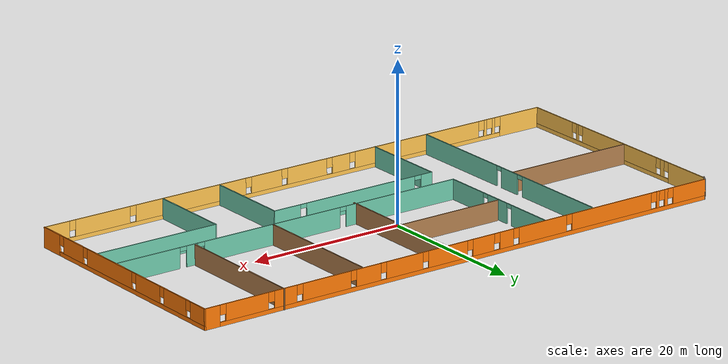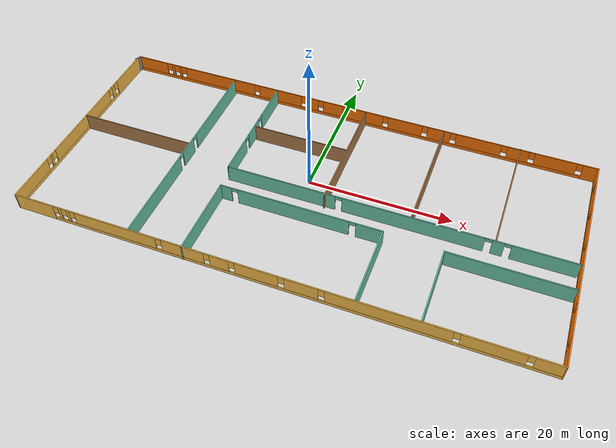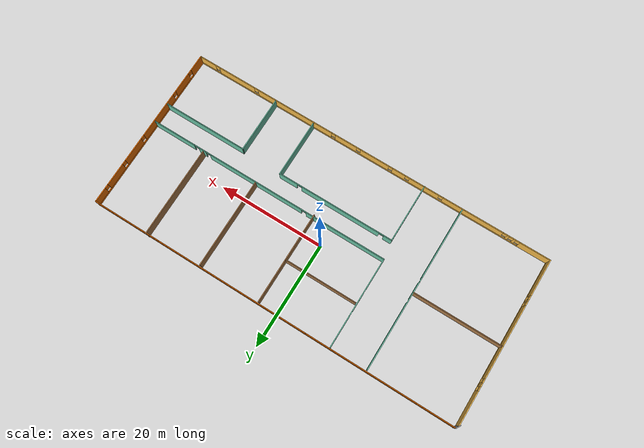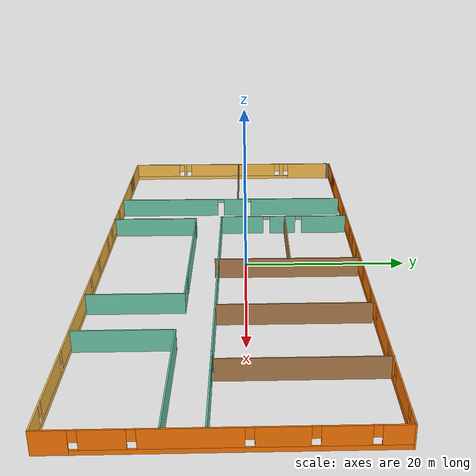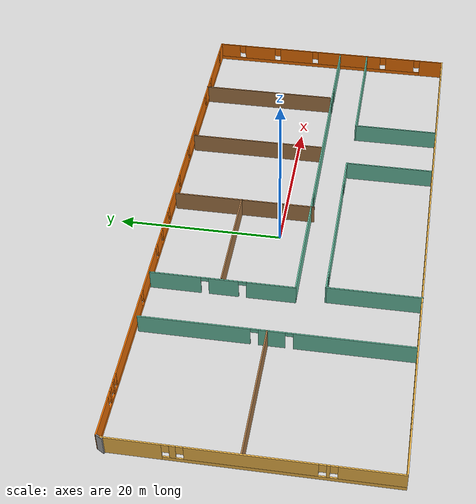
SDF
<sdf version="1.6">
 <model name="world">
  <pose>0.997952 -1.93669 0 0 -0 0</pose>
  <link name="Wall_11">
   <pose>-18.4502 -0.168882 0 0 0 -1.5708</pose>
   <visual name="Wall_11_Visual_0">
    <pose>-9.3167 0 1.25 0 -0 0</pose>
    <geometry><box><size>12.8666 0.15 2.5</size></box></geometry>
    <material>
     <script><uri>file://media/materials/scripts/gazebo.material</uri><name>Gazebo/Grey</name></script>
     <ambient>0.435294 0.796078 0.67451 1</ambient>
    </material>
    <meta><layer>0</layer></meta>
   </visual>
   <collision name="Wall_11_Collision_0">
    <geometry><box><size>12.8666 0.15 2.5</size></box></geometry>
    <pose>-9.3167 0 1.25 0 -0 0</pose>
   </collision>
   <visual name="Wall_11_Visual_1">
    <pose>-0.463393 0 1.25 0 -0 0</pose>
    <geometry><box><size>3.04002 0.15 2.5</size></box></geometry>
    <material>
     <script><uri>file://media/materials/scripts/gazebo.material</uri><name>Gazebo/Grey</name></script>
     <ambient>0.435294 0.796078 0.67451 1</ambient>
    </material>
    <meta><layer>0</layer></meta>
   </visual>
   <collision name="Wall_11_Collision_1">
    <geometry><box><size>3.04002 0.15 2.5</size></box></geometry>
    <pose>-0.463393 0 1.25 0 -0 0</pose>
   </collision>
   <visual name="Wall_11_Visual_2">
    <pose>8.85331 0 1.25 0 -0 0</pose>
    <geometry><box><size>13.7934 0.15 2.5</size></box></geometry>
    <material>
     <script><uri>file://media/materials/scripts/gazebo.material</uri><name>Gazebo/Grey</name></script>
     <ambient>0.435294 0.796078 0.67451 1</ambient>
    </material>
    <meta><layer>0</layer></meta>
   </visual>
   <collision name="Wall_11_Collision_2">
    <geometry><box><size>13.7934 0.15 2.5</size></box></geometry>
    <pose>8.85331 0 1.25 0 -0 0</pose>
   </collision>
   <visual name="Wall_11_Visual_3">
    <pose>-2.4334 0 2.25 0 -0 0</pose>
    <geometry><box><size>0.9 0.15 0.5</size></box></geometry>
    <material>
     <script><uri>file://media/materials/scripts/gazebo.material</uri><name>Gazebo/Grey</name></script>
     <ambient>0.435294 0.796078 0.67451 1</ambient>
    </material>
    <meta><layer>0</layer></meta>
   </visual>
   <collision name="Wall_11_Collision_3">
    <geometry><box><size>0.9 0.15 0.5</size></box></geometry>
    <pose>-2.4334 0 2.25 0 -0 0</pose>
   </collision>
   <visual name="Wall_11_Visual_4">
    <pose>1.50662 0 2.25 0 -0 0</pose>
    <geometry><box><size>0.9 0.15 0.5</size></box></geometry>
    <material>
     <script><uri>file://media/materials/scripts/gazebo.material</uri><name>Gazebo/Grey</name></script>
     <ambient>0.435294 0.796078 0.67451 1</ambient>
    </material>
    <meta><layer>0</layer></meta>
   </visual>
   <collision name="Wall_11_Collision_4">
    <geometry><box><size>0.9 0.15 0.5</size></box></geometry>
    <pose>1.50662 0 2.25 0 -0 0</pose>
   </collision>
  </link>
  <link name="Wall_13">
   <pose>-11.4716 7.14221 0 0 0 -1.5708</pose>
   <visual name="Wall_13_Visual_0">
    <pose>-5.58135 0 1.25 0 -0 0</pose>
    <geometry><box><size>6.0873 0.15 2.5</size></box></geometry>
    <material>
     <script><uri>file://media/materials/scripts/gazebo.material</uri><name>Gazebo/Grey</name></script>
     <ambient>0.435294 0.796078 0.67451 1</ambient>
    </material>
    <meta><layer>0</layer></meta>
   </visual>
   <collision name="Wall_13_Collision_0">
    <geometry><box><size>6.0873 0.15 2.5</size></box></geometry>
    <pose>-5.58135 0 1.25 0 -0 0</pose>
   </collision>
   <visual name="Wall_13_Visual_1">
    <pose>0.128558 0 1.25 0 -0 0</pose>
    <geometry><box><size>3.53252 0.15 2.5</size></box></geometry>
    <material>
     <script><uri>file://media/materials/scripts/gazebo.material</uri><name>Gazebo/Grey</name></script>
     <ambient>0.435294 0.796078 0.67451 1</ambient>
    </material>
    <meta><layer>0</layer></meta>
   </visual>
   <collision name="Wall_13_Collision_1">
    <geometry><box><size>3.53252 0.15 2.5</size></box></geometry>
    <pose>0.128558 0 1.25 0 -0 0</pose>
   </collision>
   <visual name="Wall_13_Visual_2">
    <pose>5.70991 0 1.25 0 -0 0</pose>
    <geometry><box><size>5.83018 0.15 2.5</size></box></geometry>
    <material>
     <script><uri>file://media/materials/scripts/gazebo.material</uri><name>Gazebo/Grey</name></script>
     <ambient>0.435294 0.796078 0.67451 1</ambient>
    </material>
    <meta><layer>0</layer></meta>
   </visual>
   <collision name="Wall_13_Collision_2">
    <geometry><box><size>5.83018 0.15 2.5</size></box></geometry>
    <pose>5.70991 0 1.25 0 -0 0</pose>
   </collision>
   <visual name="Wall_13_Visual_3">
    <pose>-2.0877 0 2.25 0 -0 0</pose>
    <geometry><box><size>0.9 0.15 0.5</size></box></geometry>
    <material>
     <script><uri>file://media/materials/scripts/gazebo.material</uri><name>Gazebo/Grey</name></script>
     <ambient>0.435294 0.796078 0.67451 1</ambient>
    </material>
    <meta><layer>0</layer></meta>
   </visual>
   <collision name="Wall_13_Collision_3">
    <geometry><box><size>0.9 0.15 0.5</size></box></geometry>
    <pose>-2.0877 0 2.25 0 -0 0</pose>
   </collision>
   <visual name="Wall_13_Visual_4">
    <pose>2.34482 0 2.25 0 -0 0</pose>
    <geometry><box><size>0.9 0.15 0.5</size></box></geometry>
    <material>
     <script><uri>file://media/materials/scripts/gazebo.material</uri><name>Gazebo/Grey</name></script>
     <ambient>0.435294 0.796078 0.67451 1</ambient>
    </material>
    <meta><layer>0</layer></meta>
   </visual>
   <collision name="Wall_13_Collision_4">
    <geometry><box><size>0.9 0.15 0.5</size></box></geometry>
    <pose>2.34482 0 2.25 0 -0 0</pose>
   </collision>
  </link>
  <link name="Wall_14">
   <pose>11.8284 -1.40779 0 0 -0 0</pose>
   <visual name="Wall_14_Visual_0">
    <pose>-15.6414 0 1.25 0 -0 0</pose>
    <geometry><box><size>15.4671 0.15 2.5</size></box></geometry>
    <material>
     <script><uri>file://media/materials/scripts/gazebo.material</uri><name>Gazebo/Grey</name></script>
     <ambient>0.435294 0.796078 0.67451 1</ambient>
    </material>
    <meta><layer>0</layer></meta>
   </visual>
   <collision name="Wall_14_Collision_0">
    <geometry><box><size>15.4671 0.15 2.5</size></box></geometry>
    <pose>-15.6414 0 1.25 0 -0 0</pose>
   </collision>
   <visual name="Wall_14_Visual_1">
    <pose>2.37266 0 1.25 0 -0 0</pose>
    <geometry><box><size>18.761 0.15 2.5</size></box></geometry>
    <material>
     <script><uri>file://media/materials/scripts/gazebo.material</uri><name>Gazebo/Grey</name></script>
     <ambient>0.435294 0.796078 0.67451 1</ambient>
    </material>
    <meta><layer>0</layer></meta>
   </visual>
   <collision name="Wall_14_Collision_1">
    <geometry><box><size>18.761 0.15 2.5</size></box></geometry>
    <pose>2.37266 0 1.25 0 -0 0</pose>
   </collision>
   <visual name="Wall_14_Visual_2">
    <pose>13.406 0 1.25 0 -0 0</pose>
    <geometry><box><size>1.50558 0.15 2.5</size></box></geometry>
    <material>
     <script><uri>file://media/materials/scripts/gazebo.material</uri><name>Gazebo/Grey</name></script>
     <ambient>0.435294 0.796078 0.67451 1</ambient>
    </material>
    <meta><layer>0</layer></meta>
   </visual>
   <collision name="Wall_14_Collision_2">
    <geometry><box><size>1.50558 0.15 2.5</size></box></geometry>
    <pose>13.406 0 1.25 0 -0 0</pose>
   </collision>
   <visual name="Wall_14_Visual_3">
    <pose>19.2169 0 1.25 0 -0 0</pose>
    <geometry><box><size>8.31625 0.15 2.5</size></box></geometry>
    <material>
     <script><uri>file://media/materials/scripts/gazebo.material</uri><name>Gazebo/Grey</name></script>
     <ambient>0.435294 0.796078 0.67451 1</ambient>
    </material>
    <meta><layer>0</layer></meta>
   </visual>
   <collision name="Wall_14_Collision_3">
    <geometry><box><size>8.31625 0.15 2.5</size></box></geometry>
    <pose>19.2169 0 1.25 0 -0 0</pose>
   </collision>
   <visual name="Wall_14_Visual_4">
    <pose>-7.45785 0 2.25 0 -0 0</pose>
    <geometry><box><size>0.9 0.15 0.5</size></box></geometry>
    <material>
     <script><uri>file://media/materials/scripts/gazebo.material</uri><name>Gazebo/Grey</name></script>
     <ambient>0.435294 0.796078 0.67451 1</ambient>
    </material>
    <meta><layer>0</layer></meta>
   </visual>
   <collision name="Wall_14_Collision_4">
    <geometry><box><size>0.9 0.15 0.5</size></box></geometry>
    <pose>-7.45785 0 2.25 0 -0 0</pose>
   </collision>
   <visual name="Wall_14_Visual_5">
    <pose>12.2032 0 2.25 0 -0 0</pose>
    <geometry><box><size>0.9 0.15 0.5</size></box></geometry>
    <material>
     <script><uri>file://media/materials/scripts/gazebo.material</uri><name>Gazebo/Grey</name></script>
     <ambient>0.435294 0.796078 0.67451 1</ambient>
    </material>
    <meta><layer>0</layer></meta>
   </visual>
   <collision name="Wall_14_Collision_5">
    <geometry><box><size>0.9 0.15 0.5</size></box></geometry>
    <pose>12.2032 0 2.25 0 -0 0</pose>
   </collision>
   <visual name="Wall_14_Visual_6">
    <pose>14.6087 0 2.25 0 -0 0</pose>
    <geometry><box><size>0.9 0.15 0.5</size></box></geometry>
    <material>
     <script><uri>file://media/materials/scripts/gazebo.material</uri><name>Gazebo/Grey</name></script>
     <ambient>0.435294 0.796078 0.67451 1</ambient>
    </material>
    <meta><layer>0</layer></meta>
   </visual>
   <collision name="Wall_14_Collision_6">
    <geometry><box><size>0.9 0.15 0.5</size></box></geometry>
    <pose>14.6087 0 2.25 0 -0 0</pose>
   </collision>
  </link>
  <link name="Wall_16">
   <collision name="Wall_16_Collision">
    <geometry><box><size>17.5 0.15 2.5</size></box></geometry>
    <pose>0 0 1.25 0 -0 0</pose>
   </collision>
   <visual name="Wall_16_Visual">
    <pose>0 0 1.25 0 -0 0</pose>
    <geometry><box><size>17.5 0.15 2.5</size></box></geometry>
    <material>
     <script><uri>file://media/materials/scripts/gazebo.material</uri><name>Gazebo/Wood</name></script>
     <ambient>1 1 1 1</ambient>
    </material>
    <meta><layer>0</layer></meta>
   </visual>
   <pose>2.48559 6.92417 0 0 0 -1.5708</pose>
  </link>
  <link name="Wall_18">
   <collision name="Wall_18_Collision">
    <geometry><box><size>17 0.15 2.5</size></box></geometry>
    <pose>0 0 1.25 0 -0 0</pose>
   </collision>
   <visual name="Wall_18_Visual">
    <pose>0 0 1.25 0 -0 0</pose>
    <geometry><box><size>17 0.15 2.5</size></box></geometry>
    <material>
     <script><uri>file://media/materials/scripts/gazebo.material</uri><name>Gazebo/Wood</name></script>
     <ambient>1 1 1 1</ambient>
    </material>
    <meta><layer>0</layer></meta>
   </visual>
   <pose>14.1166 7.17417 0 0 0 -1.5708</pose>
  </link>
  <link name="Wall_20">
   <collision name="Wall_20_Collision">
    <geometry><box><size>17.25 0.15 2.5</size></box></geometry>
    <pose>0 0 1.25 0 -0 0</pose>
   </collision>
   <visual name="Wall_20_Visual">
    <pose>0 0 1.25 0 -0 0</pose>
    <geometry><box><size>17.25 0.15 2.5</size></box></geometry>
    <material>
     <script><uri>file://media/materials/scripts/gazebo.material</uri><name>Gazebo/Wood</name></script>
     <ambient>1 1 1 1</ambient>
    </material>
    <meta><layer>0</layer></meta>
   </visual>
   <pose>24.9101 7.42136 0 0 0 -1.5708</pose>
  </link>
  <link name="Wall_22">
   <collision name="Wall_22_Collision">
    <geometry><box><size>13.75 0.15 2.5</size></box></geometry>
    <pose>0 0 1.25 0 -0 0</pose>
   </collision>
   <visual name="Wall_22_Visual">
    <pose>0 0 1.25 0 -0 0</pose>
    <geometry><box><size>13.75 0.15 2.5</size></box></geometry>
    <material>
     <script><uri>file://media/materials/scripts/gazebo.material</uri><name>Gazebo/Wood</name></script>
     <ambient>1 1 1 1</ambient>
    </material>
    <meta><layer>0</layer></meta>
   </visual>
   <pose>-4.39243 7.31791 0 0 -0 0</pose>
  </link>
  <link name="Wall_24">
   <collision name="Wall_24_Collision">
    <geometry><box><size>11.25 0.15 2.5</size></box></geometry>
    <pose>0 0 1.25 0 -0 0</pose>
   </collision>
   <visual name="Wall_24_Visual">
    <pose>0 0 1.25 0 -0 0</pose>
    <geometry><box><size>11.25 0.15 2.5</size></box></geometry>
    <material>
     <script><uri>file://media/materials/scripts/gazebo.material</uri><name>Gazebo/Grey</name></script>
     <ambient>0.435294 0.796078 0.67451 1</ambient>
    </material>
    <meta><layer>0</layer></meta>
   </visual>
   <pose>-10.9133 -10.4214 0 0 0 -1.5708</pose>
  </link>
  <link name="Wall_26">
   <pose>0.261708 -4.87136 0 0 -0 0</pose>
   <visual name="Wall_26_Visual_0">
    <pose>-10.4274 0 1.25 0 -0 0</pose>
    <geometry><box><size>1.64525 0.15 2.5</size></box></geometry>
    <material>
     <script><uri>file://media/materials/scripts/gazebo.material</uri><name>Gazebo/Grey</name></script>
     <ambient>0.435294 0.796078 0.67451 1</ambient>
    </material>
    <meta><layer>0</layer></meta>
   </visual>
   <collision name="Wall_26_Collision_0">
    <geometry><box><size>1.64525 0.15 2.5</size></box></geometry>
    <pose>-10.4274 0 1.25 0 -0 0</pose>
   </collision>
   <visual name="Wall_26_Visual_1">
    <pose>-0.993281 0 1.25 0 -0 0</pose>
    <geometry><box><size>15.4229 0.15 2.5</size></box></geometry>
    <material>
     <script><uri>file://media/materials/scripts/gazebo.material</uri><name>Gazebo/Grey</name></script>
     <ambient>0.435294 0.796078 0.67451 1</ambient>
    </material>
    <meta><layer>0</layer></meta>
   </visual>
   <collision name="Wall_26_Collision_1">
    <geometry><box><size>15.4229 0.15 2.5</size></box></geometry>
    <pose>-0.993281 0 1.25 0 -0 0</pose>
   </collision>
   <visual name="Wall_26_Visual_2">
    <pose>9.4341 0 1.25 0 -0 0</pose>
    <geometry><box><size>3.63181 0.15 2.5</size></box></geometry>
    <material>
     <script><uri>file://media/materials/scripts/gazebo.material</uri><name>Gazebo/Grey</name></script>
     <ambient>0.435294 0.796078 0.67451 1</ambient>
    </material>
    <meta><layer>0</layer></meta>
   </visual>
   <collision name="Wall_26_Collision_2">
    <geometry><box><size>3.63181 0.15 2.5</size></box></geometry>
    <pose>9.4341 0 1.25 0 -0 0</pose>
   </collision>
   <visual name="Wall_26_Visual_3">
    <pose>-9.15475 0 2.25 0 -0 0</pose>
    <geometry><box><size>0.9 0.15 0.5</size></box></geometry>
    <material>
     <script><uri>file://media/materials/scripts/gazebo.material</uri><name>Gazebo/Grey</name></script>
     <ambient>0.435294 0.796078 0.67451 1</ambient>
    </material>
    <meta><layer>0</layer></meta>
   </visual>
   <collision name="Wall_26_Collision_3">
    <geometry><box><size>0.9 0.15 0.5</size></box></geometry>
    <pose>-9.15475 0 2.25 0 -0 0</pose>
   </collision>
   <visual name="Wall_26_Visual_4">
    <pose>7.16819 0 2.25 0 -0 0</pose>
    <geometry><box><size>0.9 0.15 0.5</size></box></geometry>
    <material>
     <script><uri>file://media/materials/scripts/gazebo.material</uri><name>Gazebo/Grey</name></script>
     <ambient>0.435294 0.796078 0.67451 1</ambient>
    </material>
    <meta><layer>0</layer></meta>
   </visual>
   <collision name="Wall_26_Collision_4">
    <geometry><box><size>0.9 0.15 0.5</size></box></geometry>
    <pose>7.16819 0 2.25 0 -0 0</pose>
   </collision>
  </link>
  <link name="Wall_27">
   <collision name="Wall_27_Collision">
    <geometry><box><size>11 0.15 2.5</size></box></geometry>
    <pose>0 0 1.25 0 -0 0</pose>
   </collision>
   <visual name="Wall_27_Visual">
    <pose>0 0 1.25 0 -0 0</pose>
    <geometry><box><size>11 0.15 2.5</size></box></geometry>
    <material>
     <script><uri>file://media/materials/scripts/gazebo.material</uri><name>Gazebo/Grey</name></script>
     <ambient>0.435294 0.796078 0.67451 1</ambient>
    </material>
    <meta><layer>0</layer></meta>
   </visual>
   <pose>11.4367 -10.2964 0 0 0 -1.5708</pose>
  </link>
  <link name="Wall_29">
   <collision name="Wall_29_Collision">
    <geometry><box><size>16 0.15 2.5</size></box></geometry>
    <pose>0 0 1.25 0 -0 0</pose>
   </collision>
   <visual name="Wall_29_Visual">
    <pose>0 0 1.25 0 -0 0</pose>
    <geometry><box><size>16 0.15 2.5</size></box></geometry>
    <material>
     <script><uri>file://media/materials/scripts/gazebo.material</uri><name>Gazebo/Grey</name></script>
     <ambient>0.435294 0.796078 0.67451 1</ambient>
    </material>
    <meta><layer>0</layer></meta>
   </visual>
   <pose>27.2523 -5.24355 0 0 -0 0</pose>
  </link>
  <link name="Wall_32">
   <collision name="Wall_32_Collision">
    <geometry><box><size>10.75 0.15 2.5</size></box></geometry>
    <pose>0 0 1.25 0 -0 0</pose>
   </collision>
   <visual name="Wall_32_Visual">
    <pose>0 0 1.25 0 -0 0</pose>
    <geometry><box><size>10.75 0.15 2.5</size></box></geometry>
    <material>
     <script><uri>file://media/materials/scripts/gazebo.material</uri><name>Gazebo/Grey</name></script>
     <ambient>0.435294 0.796078 0.67451 1</ambient>
    </material>
    <meta><layer>0</layer></meta>
   </visual>
   <pose>19.3273 -10.5435 0 0 0 -1.5708</pose>
  </link>
  <link name="Wall_34">
   <collision name="Wall_34_Collision">
    <geometry><box><size>16.75 0.15 2.5</size></box></geometry>
    <pose>0 0 1.25 0 -0 0</pose>
   </collision>
   <visual name="Wall_34_Visual">
    <pose>0 0 1.25 0 -0 0</pose>
    <geometry><box><size>16.75 0.15 2.5</size></box></geometry>
    <material>
     <script><uri>file://media/materials/scripts/gazebo.material</uri><name>Gazebo/Wood</name></script>
     <ambient>1 1 1 1</ambient>
    </material>
    <meta><layer>0</layer></meta>
   </visual>
   <pose>-26.8057 0.804561 0 0 -0 0</pose>
  </link>
  <link name="Wall_5">
   <pose>-35.1988 -0.26193 0 0 0 -1.5708</pose>
   <visual name="Wall_5_Visual_0">
    <pose>-12.5335 0 1.25 0 -0 0</pose>
    <geometry><box><size>6.43309 0.15 2.5</size></box></geometry>
    <material>
     <script><uri>file://media/materials/scripts/gazebo.material</uri><name>Gazebo/Grey</name></script>
     <ambient>1 0.764706 0.305882 1</ambient>
    </material>
    <meta><layer>0</layer></meta>
   </visual>
   <collision name="Wall_5_Collision_0">
    <geometry><box><size>6.43309 0.15 2.5</size></box></geometry>
    <pose>-12.5335 0 1.25 0 -0 0</pose>
   </collision>
   <visual name="Wall_5_Visual_1">
    <pose>3.21654 0 0.25 0 -0 0</pose>
    <geometry><box><size>25.0669 0.15 0.5</size></box></geometry>
    <material>
     <script><uri>file://media/materials/scripts/gazebo.material</uri><name>Gazebo/Grey</name></script>
     <ambient>1 0.764706 0.305882 1</ambient>
    </material>
    <meta><layer>0</layer></meta>
   </visual>
   <collision name="Wall_5_Collision_1">
    <geometry><box><size>25.0669 0.15 0.5</size></box></geometry>
    <pose>3.21654 0 0.25 0 -0 0</pose>
   </collision>
   <visual name="Wall_5_Visual_2">
    <pose>-8.17816 0 1.5 0 -0 0</pose>
    <geometry><box><size>0.677508 0.15 2</size></box></geometry>
    <material>
     <script><uri>file://media/materials/scripts/gazebo.material</uri><name>Gazebo/Grey</name></script>
     <ambient>1 0.764706 0.305882 1</ambient>
    </material>
    <meta><layer>0</layer></meta>
   </visual>
   <collision name="Wall_5_Collision_2">
    <geometry><box><size>0.677508 0.15 2</size></box></geometry>
    <pose>-8.17816 0 1.5 0 -0 0</pose>
   </collision>
   <visual name="Wall_5_Visual_3">
    <pose>-0.127812 0 1.5 0 -0 0</pose>
    <geometry><box><size>13.8232 0.15 2</size></box></geometry>
    <material>
     <script><uri>file://media/materials/scripts/gazebo.material</uri><name>Gazebo/Grey</name></script>
     <ambient>1 0.764706 0.305882 1</ambient>
    </material>
    <meta><layer>0</layer></meta>
   </visual>
   <collision name="Wall_5_Collision_3">
    <geometry><box><size>13.8232 0.15 2</size></box></geometry>
    <pose>-0.127812 0 1.5 0 -0 0</pose>
   </collision>
   <visual name="Wall_5_Visual_4">
    <pose>7.76499 0 1.5 0 -0 0</pose>
    <geometry><box><size>0.362429 0.15 2</size></box></geometry>
    <material>
     <script><uri>file://media/materials/scripts/gazebo.material</uri><name>Gazebo/Grey</name></script>
     <ambient>1 0.764706 0.305882 1</ambient>
    </material>
    <meta><layer>0</layer></meta>
   </visual>
   <collision name="Wall_5_Collision_4">
    <geometry><box><size>0.362429 0.15 2</size></box></geometry>
    <pose>7.76499 0 1.5 0 -0 0</pose>
   </collision>
   <visual name="Wall_5_Visual_5">
    <pose>12.2481 0 1.5 0 -0 0</pose>
    <geometry><box><size>7.00379 0.15 2</size></box></geometry>
    <material>
     <script><uri>file://media/materials/scripts/gazebo.material</uri><name>Gazebo/Grey</name></script>
     <ambient>1 0.764706 0.305882 1</ambient>
    </material>
    <meta><layer>0</layer></meta>
   </visual>
   <collision name="Wall_5_Collision_5">
    <geometry><box><size>7.00379 0.15 2</size></box></geometry>
    <pose>12.2481 0 1.5 0 -0 0</pose>
   </collision>
   <visual name="Wall_5_Visual_6">
    <pose>-8.91691 0 1.9 0 -0 0</pose>
    <geometry><box><size>0.8 0.15 1.2</size></box></geometry>
    <material>
     <script><uri>file://media/materials/scripts/gazebo.material</uri><name>Gazebo/Grey</name></script>
     <ambient>1 0.764706 0.305882 1</ambient>
    </material>
    <meta><layer>0</layer></meta>
   </visual>
   <collision name="Wall_5_Collision_6">
    <geometry><box><size>0.8 0.15 1.2</size></box></geometry>
    <pose>-8.91691 0 1.9 0 -0 0</pose>
   </collision>
   <visual name="Wall_5_Visual_7">
    <pose>-7.4394 0 1.9 0 -0 0</pose>
    <geometry><box><size>0.8 0.15 1.2</size></box></geometry>
    <material>
     <script><uri>file://media/materials/scripts/gazebo.material</uri><name>Gazebo/Grey</name></script>
     <ambient>1 0.764706 0.305882 1</ambient>
    </material>
    <meta><layer>0</layer></meta>
   </visual>
   <collision name="Wall_5_Collision_7">
    <geometry><box><size>0.8 0.15 1.2</size></box></geometry>
    <pose>-7.4394 0 1.9 0 -0 0</pose>
   </collision>
   <visual name="Wall_5_Visual_8">
    <pose>7.18378 0 1.9 0 -0 0</pose>
    <geometry><box><size>0.8 0.15 1.2</size></box></geometry>
    <material>
     <script><uri>file://media/materials/scripts/gazebo.material</uri><name>Gazebo/Grey</name></script>
     <ambient>1 0.764706 0.305882 1</ambient>
    </material>
    <meta><layer>0</layer></meta>
   </visual>
   <collision name="Wall_5_Collision_8">
    <geometry><box><size>0.8 0.15 1.2</size></box></geometry>
    <pose>7.18378 0 1.9 0 -0 0</pose>
   </collision>
   <visual name="Wall_5_Visual_9">
    <pose>8.34621 0 1.9 0 -0 0</pose>
    <geometry><box><size>0.8 0.15 1.2</size></box></geometry>
    <material>
     <script><uri>file://media/materials/scripts/gazebo.material</uri><name>Gazebo/Grey</name></script>
     <ambient>1 0.764706 0.305882 1</ambient>
    </material>
    <meta><layer>0</layer></meta>
   </visual>
   <collision name="Wall_5_Collision_9">
    <geometry><box><size>0.8 0.15 1.2</size></box></geometry>
    <pose>8.34621 0 1.9 0 -0 0</pose>
   </collision>
  </link>
  <link name="Wall_6">
   <pose>0.101225 -15.9369 0 0 -0 0</pose>
   <visual name="Wall_6_Visual_0">
    <pose>-32.4811 0 1.25 0 -0 0</pose>
    <geometry><box><size>5.78775 0.15 2.5</size></box></geometry>
    <material>
     <script><uri>file://media/materials/scripts/gazebo.material</uri><name>Gazebo/Grey</name></script>
     <ambient>1 0.764706 0.305882 1</ambient>
    </material>
    <meta><layer>0</layer></meta>
   </visual>
   <collision name="Wall_6_Collision_0">
    <geometry><box><size>5.78775 0.15 2.5</size></box></geometry>
    <pose>-32.4811 0 1.25 0 -0 0</pose>
   </collision>
   <visual name="Wall_6_Visual_1">
    <pose>2.89388 0 0.25 0 -0 0</pose>
    <geometry><box><size>64.9622 0.15 0.5</size></box></geometry>
    <material>
     <script><uri>file://media/materials/scripts/gazebo.material</uri><name>Gazebo/Grey</name></script>
     <ambient>1 0.764706 0.305882 1</ambient>
    </material>
    <meta><layer>0</layer></meta>
   </visual>
   <collision name="Wall_6_Collision_1">
    <geometry><box><size>64.9622 0.15 0.5</size></box></geometry>
    <pose>2.89388 0 0.25 0 -0 0</pose>
   </collision>
   <visual name="Wall_6_Visual_2">
    <pose>-28.5804 0 1.5 0 -0 0</pose>
    <geometry><box><size>0.413667 0.15 2</size></box></geometry>
    <material>
     <script><uri>file://media/materials/scripts/gazebo.material</uri><name>Gazebo/Grey</name></script>
     <ambient>1 0.764706 0.305882 1</ambient>
    </material>
    <meta><layer>0</layer></meta>
   </visual>
   <collision name="Wall_6_Collision_2">
    <geometry><box><size>0.413667 0.15 2</size></box></geometry>
    <pose>-28.5804 0 1.5 0 -0 0</pose>
   </collision>
   <visual name="Wall_6_Visual_3">
    <pose>-27.3667 0 1.5 0 -0 0</pose>
    <geometry><box><size>0.413667 0.15 2</size></box></geometry>
    <material>
     <script><uri>file://media/materials/scripts/gazebo.material</uri><name>Gazebo/Grey</name></script>
     <ambient>1 0.764706 0.305882 1</ambient>
    </material>
    <meta><layer>0</layer></meta>
   </visual>
   <collision name="Wall_6_Collision_3">
    <geometry><box><size>0.413667 0.15 2</size></box></geometry>
    <pose>-27.3667 0 1.5 0 -0 0</pose>
   </collision>
   <visual name="Wall_6_Visual_4">
    <pose>-20.5298 0 1.5 0 -0 0</pose>
    <geometry><box><size>11.6603 0.15 2</size></box></geometry>
    <material>
     <script><uri>file://media/materials/scripts/gazebo.material</uri><name>Gazebo/Grey</name></script>
     <ambient>1 0.764706 0.305882 1</ambient>
    </material>
    <meta><layer>0</layer></meta>
   </visual>
   <collision name="Wall_6_Collision_4">
    <geometry><box><size>11.6603 0.15 2</size></box></geometry>
    <pose>-20.5298 0 1.5 0 -0 0</pose>
   </collision>
   <visual name="Wall_6_Visual_5">
    <pose>-10.9822 0 1.5 0 -0 0</pose>
    <geometry><box><size>5.83472 0.15 2</size></box></geometry>
    <material>
     <script><uri>file://media/materials/scripts/gazebo.material</uri><name>Gazebo/Grey</name></script>
     <ambient>1 0.764706 0.305882 1</ambient>
    </material>
    <meta><layer>0</layer></meta>
   </visual>
   <collision name="Wall_6_Collision_5">
    <geometry><box><size>5.83472 0.15 2</size></box></geometry>
    <pose>-10.9822 0 1.5 0 -0 0</pose>
   </collision>
   <visual name="Wall_6_Visual_6">
    <pose>-5.99726 0 1.5 0 -0 0</pose>
    <geometry><box><size>2.53524 0.15 2</size></box></geometry>
    <material>
     <script><uri>file://media/materials/scripts/gazebo.material</uri><name>Gazebo/Grey</name></script>
     <ambient>1 0.764706 0.305882 1</ambient>
    </material>
    <meta><layer>0</layer></meta>
   </visual>
   <collision name="Wall_6_Collision_6">
    <geometry><box><size>2.53524 0.15 2</size></box></geometry>
    <pose>-5.99726 0 1.5 0 -0 0</pose>
   </collision>
   <visual name="Wall_6_Visual_7">
    <pose>-1.09549 0 1.5 0 -0 0</pose>
    <geometry><box><size>5.66831 0.15 2</size></box></geometry>
    <material>
     <script><uri>file://media/materials/scripts/gazebo.material</uri><name>Gazebo/Grey</name></script>
     <ambient>1 0.764706 0.305882 1</ambient>
    </material>
    <meta><layer>0</layer></meta>
   </visual>
   <collision name="Wall_6_Collision_7">
    <geometry><box><size>5.66831 0.15 2</size></box></geometry>
    <pose>-1.09549 0 1.5 0 -0 0</pose>
   </collision>
   <visual name="Wall_6_Visual_8">
    <pose>4.69748 0 1.5 0 -0 0</pose>
    <geometry><box><size>4.31763 0.15 2</size></box></geometry>
    <material>
     <script><uri>file://media/materials/scripts/gazebo.material</uri><name>Gazebo/Grey</name></script>
     <ambient>1 0.764706 0.305882 1</ambient>
    </material>
    <meta><layer>0</layer></meta>
   </visual>
   <collision name="Wall_6_Collision_8">
    <geometry><box><size>4.31763 0.15 2</size></box></geometry>
    <pose>4.69748 0 1.5 0 -0 0</pose>
   </collision>
   <visual name="Wall_6_Visual_9">
    <pose>15.3167 0 1.5 0 -0 0</pose>
    <geometry><box><size>15.3208 0.15 2</size></box></geometry>
    <material>
     <script><uri>file://media/materials/scripts/gazebo.material</uri><name>Gazebo/Grey</name></script>
     <ambient>1 0.764706 0.305882 1</ambient>
    </material>
    <meta><layer>0</layer></meta>
   </visual>
   <collision name="Wall_6_Collision_9">
    <geometry><box><size>15.3208 0.15 2</size></box></geometry>
    <pose>15.3167 0 1.5 0 -0 0</pose>
   </collision>
   <visual name="Wall_6_Visual_10">
    <pose>27.4964 0 1.5 0 -0 0</pose>
    <geometry><box><size>7.43877 0.15 2</size></box></geometry>
    <material>
     <script><uri>file://media/materials/scripts/gazebo.material</uri><name>Gazebo/Grey</name></script>
     <ambient>1 0.764706 0.305882 1</ambient>
    </material>
    <meta><layer>0</layer></meta>
   </visual>
   <collision name="Wall_6_Collision_10">
    <geometry><box><size>7.43877 0.15 2</size></box></geometry>
    <pose>27.4964 0 1.5 0 -0 0</pose>
   </collision>
   <visual name="Wall_6_Visual_11">
    <pose>33.6954 0 1.5 0 -0 0</pose>
    <geometry><box><size>3.35917 0.15 2</size></box></geometry>
    <material>
     <script><uri>file://media/materials/scripts/gazebo.material</uri><name>Gazebo/Grey</name></script>
     <ambient>1 0.764706 0.305882 1</ambient>
    </material>
    <meta><layer>0</layer></meta>
   </visual>
   <collision name="Wall_6_Collision_11">
    <geometry><box><size>3.35917 0.15 2</size></box></geometry>
    <pose>33.6954 0 1.5 0 -0 0</pose>
   </collision>
   <visual name="Wall_6_Visual_12">
    <pose>-29.1872 0 1.9 0 -0 0</pose>
    <geometry><box><size>0.8 0.15 1.2</size></box></geometry>
    <material>
     <script><uri>file://media/materials/scripts/gazebo.material</uri><name>Gazebo/Grey</name></script>
     <ambient>1 0.764706 0.305882 1</ambient>
    </material>
    <meta><layer>0</layer></meta>
   </visual>
   <collision name="Wall_6_Collision_12">
    <geometry><box><size>0.8 0.15 1.2</size></box></geometry>
    <pose>-29.1872 0 1.9 0 -0 0</pose>
   </collision>
   <visual name="Wall_6_Visual_13">
    <pose>-27.9736 0 1.9 0 -0 0</pose>
    <geometry><box><size>0.8 0.15 1.2</size></box></geometry>
    <material>
     <script><uri>file://media/materials/scripts/gazebo.material</uri><name>Gazebo/Grey</name></script>
     <ambient>1 0.764706 0.305882 1</ambient>
    </material>
    <meta><layer>0</layer></meta>
   </visual>
   <collision name="Wall_6_Collision_13">
    <geometry><box><size>0.8 0.15 1.2</size></box></geometry>
    <pose>-27.9736 0 1.9 0 -0 0</pose>
   </collision>
   <visual name="Wall_6_Visual_14">
    <pose>-26.7599 0 1.9 0 -0 0</pose>
    <geometry><box><size>0.8 0.15 1.2</size></box></geometry>
    <material>
     <script><uri>file://media/materials/scripts/gazebo.material</uri><name>Gazebo/Grey</name></script>
     <ambient>1 0.764706 0.305882 1</ambient>
    </material>
    <meta><layer>0</layer></meta>
   </visual>
   <collision name="Wall_6_Collision_14">
    <geometry><box><size>0.8 0.15 1.2</size></box></geometry>
    <pose>-26.7599 0 1.9 0 -0 0</pose>
   </collision>
   <visual name="Wall_6_Visual_15">
    <pose>-14.2996 0 1.9 0 -0 0</pose>
    <geometry><box><size>0.8 0.15 1.2</size></box></geometry>
    <material>
     <script><uri>file://media/materials/scripts/gazebo.material</uri><name>Gazebo/Grey</name></script>
     <ambient>1 0.764706 0.305882 1</ambient>
    </material>
    <meta><layer>0</layer></meta>
   </visual>
   <collision name="Wall_6_Collision_15">
    <geometry><box><size>0.8 0.15 1.2</size></box></geometry>
    <pose>-14.2996 0 1.9 0 -0 0</pose>
   </collision>
   <visual name="Wall_6_Visual_16">
    <pose>-7.66488 0 1.9 0 -0 0</pose>
    <geometry><box><size>0.8 0.15 1.2</size></box></geometry>
    <material>
     <script><uri>file://media/materials/scripts/gazebo.material</uri><name>Gazebo/Grey</name></script>
     <ambient>1 0.764706 0.305882 1</ambient>
    </material>
    <meta><layer>0</layer></meta>
   </visual>
   <collision name="Wall_6_Collision_16">
    <geometry><box><size>0.8 0.15 1.2</size></box></geometry>
    <pose>-7.66488 0 1.9 0 -0 0</pose>
   </collision>
   <visual name="Wall_6_Visual_17">
    <pose>-4.32964 0 1.9 0 -0 0</pose>
    <geometry><box><size>0.8 0.15 1.2</size></box></geometry>
    <material>
     <script><uri>file://media/materials/scripts/gazebo.material</uri><name>Gazebo/Grey</name></script>
     <ambient>1 0.764706 0.305882 1</ambient>
    </material>
    <meta><layer>0</layer></meta>
   </visual>
   <collision name="Wall_6_Collision_17">
    <geometry><box><size>0.8 0.15 1.2</size></box></geometry>
    <pose>-4.32964 0 1.9 0 -0 0</pose>
   </collision>
   <visual name="Wall_6_Visual_18">
    <pose>2.13867 0 1.9 0 -0 0</pose>
    <geometry><box><size>0.8 0.15 1.2</size></box></geometry>
    <material>
     <script><uri>file://media/materials/scripts/gazebo.material</uri><name>Gazebo/Grey</name></script>
     <ambient>1 0.764706 0.305882 1</ambient>
    </material>
    <meta><layer>0</layer></meta>
   </visual>
   <collision name="Wall_6_Collision_18">
    <geometry><box><size>0.8 0.15 1.2</size></box></geometry>
    <pose>2.13867 0 1.9 0 -0 0</pose>
   </collision>
   <visual name="Wall_6_Visual_19">
    <pose>7.2563 0 1.9 0 -0 0</pose>
    <geometry><box><size>0.8 0.15 1.2</size></box></geometry>
    <material>
     <script><uri>file://media/materials/scripts/gazebo.material</uri><name>Gazebo/Grey</name></script>
     <ambient>1 0.764706 0.305882 1</ambient>
    </material>
    <meta><layer>0</layer></meta>
   </visual>
   <collision name="Wall_6_Collision_19">
    <geometry><box><size>0.8 0.15 1.2</size></box></geometry>
    <pose>7.2563 0 1.9 0 -0 0</pose>
   </collision>
   <visual name="Wall_6_Visual_20">
    <pose>23.3771 0 1.9 0 -0 0</pose>
    <geometry><box><size>0.8 0.15 1.2</size></box></geometry>
    <material>
     <script><uri>file://media/materials/scripts/gazebo.material</uri><name>Gazebo/Grey</name></script>
     <ambient>1 0.764706 0.305882 1</ambient>
    </material>
    <meta><layer>0</layer></meta>
   </visual>
   <collision name="Wall_6_Collision_20">
    <geometry><box><size>0.8 0.15 1.2</size></box></geometry>
    <pose>23.3771 0 1.9 0 -0 0</pose>
   </collision>
   <visual name="Wall_6_Visual_21">
    <pose>31.6158 0 1.9 0 -0 0</pose>
    <geometry><box><size>0.8 0.15 1.2</size></box></geometry>
    <material>
     <script><uri>file://media/materials/scripts/gazebo.material</uri><name>Gazebo/Grey</name></script>
     <ambient>1 0.764706 0.305882 1</ambient>
    </material>
    <meta><layer>0</layer></meta>
   </visual>
   <collision name="Wall_6_Collision_21">
    <geometry><box><size>0.8 0.15 1.2</size></box></geometry>
    <pose>31.6158 0 1.9 0 -0 0</pose>
   </collision>
  </link>
  <link name="Wall_7">
   <pose>35.4012 -0.01193 0 0 -0 1.5708</pose>
   <visual name="Wall_7_Visual_0">
    <pose>-14.3843 0 1.25 0 -0 0</pose>
    <geometry><box><size>3.23139 0.15 2.5</size></box></geometry>
    <material>
     <script><uri>file://media/materials/scripts/gazebo.material</uri><name>Gazebo/Grey</name></script>
     <ambient>0.996078 0.47451 0.0196078 1</ambient>
    </material>
    <meta><layer>0</layer></meta>
   </visual>
   <collision name="Wall_7_Collision_0">
    <geometry><box><size>3.23139 0.15 2.5</size></box></geometry>
    <pose>-14.3843 0 1.25 0 -0 0</pose>
   </collision>
   <visual name="Wall_7_Visual_1">
    <pose>1.6157 0 0.25 0 -0 0</pose>
    <geometry><box><size>28.7686 0.15 0.5</size></box></geometry>
    <material>
     <script><uri>file://media/materials/scripts/gazebo.material</uri><name>Gazebo/Grey</name></script>
     <ambient>0.996078 0.47451 0.0196078 1</ambient>
    </material>
    <meta><layer>0</layer></meta>
   </visual>
   <collision name="Wall_7_Collision_1">
    <geometry><box><size>28.7686 0.15 0.5</size></box></geometry>
    <pose>1.6157 0 0.25 0 -0 0</pose>
   </collision>
   <visual name="Wall_7_Visual_2">
    <pose>-9.958 0 1.5 0 -0 0</pose>
    <geometry><box><size>4.02121 0.15 2</size></box></geometry>
    <material>
     <script><uri>file://media/materials/scripts/gazebo.material</uri><name>Gazebo/Grey</name></script>
     <ambient>0.996078 0.47451 0.0196078 1</ambient>
    </material>
    <meta><layer>0</layer></meta>
   </visual>
   <collision name="Wall_7_Collision_2">
    <geometry><box><size>4.02121 0.15 2</size></box></geometry>
    <pose>-9.958 0 1.5 0 -0 0</pose>
   </collision>
   <visual name="Wall_7_Visual_3">
    <pose>-2.67355 0 1.5 0 -0 0</pose>
    <geometry><box><size>8.9477 0.15 2</size></box></geometry>
    <material>
     <script><uri>file://media/materials/scripts/gazebo.material</uri><name>Gazebo/Grey</name></script>
     <ambient>0.996078 0.47451 0.0196078 1</ambient>
    </material>
    <meta><layer>0</layer></meta>
   </visual>
   <collision name="Wall_7_Collision_3">
    <geometry><box><size>8.9477 0.15 2</size></box></geometry>
    <pose>-2.67355 0 1.5 0 -0 0</pose>
   </collision>
   <visual name="Wall_7_Visual_4">
    <pose>4.95128 0 1.5 0 -0 0</pose>
    <geometry><box><size>4.70196 0.15 2</size></box></geometry>
    <material>
     <script><uri>file://media/materials/scripts/gazebo.material</uri><name>Gazebo/Grey</name></script>
     <ambient>0.996078 0.47451 0.0196078 1</ambient>
    </material>
    <meta><layer>0</layer></meta>
   </visual>
   <collision name="Wall_7_Collision_4">
    <geometry><box><size>4.70196 0.15 2</size></box></geometry>
    <pose>4.95128 0 1.5 0 -0 0</pose>
   </collision>
   <visual name="Wall_7_Visual_5">
    <pose>10.251 0 1.5 0 -0 0</pose>
    <geometry><box><size>4.2974 0.15 2</size></box></geometry>
    <material>
     <script><uri>file://media/materials/scripts/gazebo.material</uri><name>Gazebo/Grey</name></script>
     <ambient>0.996078 0.47451 0.0196078 1</ambient>
    </material>
    <meta><layer>0</layer></meta>
   </visual>
   <collision name="Wall_7_Collision_5">
    <geometry><box><size>4.2974 0.15 2</size></box></geometry>
    <pose>10.251 0 1.5 0 -0 0</pose>
   </collision>
   <visual name="Wall_7_Visual_6">
    <pose>14.5998 0 1.5 0 -0 0</pose>
    <geometry><box><size>2.80034 0.15 2</size></box></geometry>
    <material>
     <script><uri>file://media/materials/scripts/gazebo.material</uri><name>Gazebo/Grey</name></script>
     <ambient>0.996078 0.47451 0.0196078 1</ambient>
    </material>
    <meta><layer>0</layer></meta>
   </visual>
   <collision name="Wall_7_Collision_6">
    <geometry><box><size>2.80034 0.15 2</size></box></geometry>
    <pose>14.5998 0 1.5 0 -0 0</pose>
   </collision>
   <visual name="Wall_7_Visual_7">
    <pose>-12.3686 0 1.9 0 -0 0</pose>
    <geometry><box><size>0.8 0.15 1.2</size></box></geometry>
    <material>
     <script><uri>file://media/materials/scripts/gazebo.material</uri><name>Gazebo/Grey</name></script>
     <ambient>0.996078 0.47451 0.0196078 1</ambient>
    </material>
    <meta><layer>0</layer></meta>
   </visual>
   <collision name="Wall_7_Collision_7">
    <geometry><box><size>0.8 0.15 1.2</size></box></geometry>
    <pose>-12.3686 0 1.9 0 -0 0</pose>
   </collision>
   <visual name="Wall_7_Visual_8">
    <pose>-7.5474 0 1.9 0 -0 0</pose>
    <geometry><box><size>0.8 0.15 1.2</size></box></geometry>
    <material>
     <script><uri>file://media/materials/scripts/gazebo.material</uri><name>Gazebo/Grey</name></script>
     <ambient>0.996078 0.47451 0.0196078 1</ambient>
    </material>
    <meta><layer>0</layer></meta>
   </visual>
   <collision name="Wall_7_Collision_8">
    <geometry><box><size>0.8 0.15 1.2</size></box></geometry>
    <pose>-7.5474 0 1.9 0 -0 0</pose>
   </collision>
   <visual name="Wall_7_Visual_9">
    <pose>2.2003 0 1.9 0 -0 0</pose>
    <geometry><box><size>0.8 0.15 1.2</size></box></geometry>
    <material>
     <script><uri>file://media/materials/scripts/gazebo.material</uri><name>Gazebo/Grey</name></script>
     <ambient>0.996078 0.47451 0.0196078 1</ambient>
    </material>
    <meta><layer>0</layer></meta>
   </visual>
   <collision name="Wall_7_Collision_9">
    <geometry><box><size>0.8 0.15 1.2</size></box></geometry>
    <pose>2.2003 0 1.9 0 -0 0</pose>
   </collision>
   <visual name="Wall_7_Visual_10">
    <pose>7.70226 0 1.9 0 -0 0</pose>
    <geometry><box><size>0.8 0.15 1.2</size></box></geometry>
    <material>
     <script><uri>file://media/materials/scripts/gazebo.material</uri><name>Gazebo/Grey</name></script>
     <ambient>0.996078 0.47451 0.0196078 1</ambient>
    </material>
    <meta><layer>0</layer></meta>
   </visual>
   <collision name="Wall_7_Collision_10">
    <geometry><box><size>0.8 0.15 1.2</size></box></geometry>
    <pose>7.70226 0 1.9 0 -0 0</pose>
   </collision>
   <visual name="Wall_7_Visual_11">
    <pose>12.7997 0 1.9 0 -0 0</pose>
    <geometry><box><size>0.8 0.15 1.2</size></box></geometry>
    <material>
     <script><uri>file://media/materials/scripts/gazebo.material</uri><name>Gazebo/Grey</name></script>
     <ambient>0.996078 0.47451 0.0196078 1</ambient>
    </material>
    <meta><layer>0</layer></meta>
   </visual>
   <collision name="Wall_7_Collision_11">
    <geometry><box><size>0.8 0.15 1.2</size></box></geometry>
    <pose>12.7997 0 1.9 0 -0 0</pose>
   </collision>
  </link>
  <link name="Wall_8">
   <pose>0.226225 15.9131 0 0 -0 3.14159</pose>
   <visual name="Wall_8_Visual_0">
    <pose>-34.2388 0 1.25 0 -0 0</pose>
    <geometry><box><size>2.02248 0.15 2.5</size></box></geometry>
    <material>
     <script><uri>file://media/materials/scripts/gazebo.material</uri><name>Gazebo/Grey</name></script>
     <ambient>0.996078 0.47451 0.0196078 1</ambient>
    </material>
    <meta><layer>0</layer></meta>
   </visual>
   <collision name="Wall_8_Collision_0">
    <geometry><box><size>2.02248 0.15 2.5</size></box></geometry>
    <pose>-34.2388 0 1.25 0 -0 0</pose>
   </collision>
   <visual name="Wall_8_Visual_1">
    <pose>1.01124 0 0.25 0 -0 0</pose>
    <geometry><box><size>68.4775 0.15 0.5</size></box></geometry>
    <material>
     <script><uri>file://media/materials/scripts/gazebo.material</uri><name>Gazebo/Grey</name></script>
     <ambient>0.996078 0.47451 0.0196078 1</ambient>
    </material>
    <meta><layer>0</layer></meta>
   </visual>
   <collision name="Wall_8_Collision_1">
    <geometry><box><size>68.4775 0.15 0.5</size></box></geometry>
    <pose>1.01124 0 0.25 0 -0 0</pose>
   </collision>
   <visual name="Wall_8_Visual_2">
    <pose>-29.5911 0 1.5 0 -0 0</pose>
    <geometry><box><size>5.67289 0.15 2</size></box></geometry>
    <material>
     <script><uri>file://media/materials/scripts/gazebo.material</uri><name>Gazebo/Grey</name></script>
     <ambient>0.996078 0.47451 0.0196078 1</ambient>
    </material>
    <meta><layer>0</layer></meta>
   </visual>
   <collision name="Wall_8_Collision_2">
    <geometry><box><size>5.67289 0.15 2</size></box></geometry>
    <pose>-29.5911 0 1.5 0 -0 0</pose>
   </collision>
   <visual name="Wall_8_Visual_3">
    <pose>-24.4532 0 1.5 0 -0 0</pose>
    <geometry><box><size>3.00282 0.15 2</size></box></geometry>
    <material>
     <script><uri>file://media/materials/scripts/gazebo.material</uri><name>Gazebo/Grey</name></script>
     <ambient>0.996078 0.47451 0.0196078 1</ambient>
    </material>
    <meta><layer>0</layer></meta>
   </visual>
   <collision name="Wall_8_Collision_3">
    <geometry><box><size>3.00282 0.15 2</size></box></geometry>
    <pose>-24.4532 0 1.5 0 -0 0</pose>
   </collision>
   <visual name="Wall_8_Visual_4">
    <pose>-18.9108 0 1.5 0 -0 0</pose>
    <geometry><box><size>6.482 0.15 2</size></box></geometry>
    <material>
     <script><uri>file://media/materials/scripts/gazebo.material</uri><name>Gazebo/Grey</name></script>
     <ambient>0.996078 0.47451 0.0196078 1</ambient>
    </material>
    <meta><layer>0</layer></meta>
   </visual>
   <collision name="Wall_8_Collision_4">
    <geometry><box><size>6.482 0.15 2</size></box></geometry>
    <pose>-18.9108 0 1.5 0 -0 0</pose>
   </collision>
   <visual name="Wall_8_Visual_5">
    <pose>-13.2066 0 1.5 0 -0 0</pose>
    <geometry><box><size>3.32647 0.15 2</size></box></geometry>
    <material>
     <script><uri>file://media/materials/scripts/gazebo.material</uri><name>Gazebo/Grey</name></script>
     <ambient>0.996078 0.47451 0.0196078 1</ambient>
    </material>
    <meta><layer>0</layer></meta>
   </visual>
   <collision name="Wall_8_Collision_5">
    <geometry><box><size>3.32647 0.15 2</size></box></geometry>
    <pose>-13.2066 0 1.5 0 -0 0</pose>
   </collision>
   <visual name="Wall_8_Visual_6">
    <pose>-8.23053 0 1.5 0 -0 0</pose>
    <geometry><box><size>5.0256 0.15 2</size></box></geometry>
    <material>
     <script><uri>file://media/materials/scripts/gazebo.material</uri><name>Gazebo/Grey</name></script>
     <ambient>0.996078 0.47451 0.0196078 1</ambient>
    </material>
    <meta><layer>0</layer></meta>
   </visual>
   <collision name="Wall_8_Collision_6">
    <geometry><box><size>5.0256 0.15 2</size></box></geometry>
    <pose>-8.23053 0 1.5 0 -0 0</pose>
   </collision>
   <visual name="Wall_8_Visual_7">
    <pose>-2.20265 0 1.5 0 -0 0</pose>
    <geometry><box><size>5.43016 0.15 2</size></box></geometry>
    <material>
     <script><uri>file://media/materials/scripts/gazebo.material</uri><name>Gazebo/Grey</name></script>
     <ambient>0.996078 0.47451 0.0196078 1</ambient>
    </material>
    <meta><layer>0</layer></meta>
   </visual>
   <collision name="Wall_8_Collision_7">
    <geometry><box><size>5.43016 0.15 2</size></box></geometry>
    <pose>-2.20265 0 1.5 0 -0 0</pose>
   </collision>
   <visual name="Wall_8_Visual_8">
    <pose>2.81385 0 1.5 0 -0 0</pose>
    <geometry><box><size>3.00282 0.15 2</size></box></geometry>
    <material>
     <script><uri>file://media/materials/scripts/gazebo.material</uri><name>Gazebo/Grey</name></script>
     <ambient>0.996078 0.47451 0.0196078 1</ambient>
    </material>
    <meta><layer>0</layer></meta>
   </visual>
   <collision name="Wall_8_Collision_8">
    <geometry><box><size>3.00282 0.15 2</size></box></geometry>
    <pose>2.81385 0 1.5 0 -0 0</pose>
   </collision>
   <visual name="Wall_8_Visual_9">
    <pose>6.09075 0 1.5 0 -0 0</pose>
    <geometry><box><size>1.95098 0.15 2</size></box></geometry>
    <material>
     <script><uri>file://media/materials/scripts/gazebo.material</uri><name>Gazebo/Grey</name></script>
     <ambient>0.996078 0.47451 0.0196078 1</ambient>
    </material>
    <meta><layer>0</layer></meta>
   </visual>
   <collision name="Wall_8_Collision_9">
    <geometry><box><size>1.95098 0.15 2</size></box></geometry>
    <pose>6.09075 0 1.5 0 -0 0</pose>
   </collision>
   <visual name="Wall_8_Visual_10">
    <pose>11.2691 0 1.5 0 -0 0</pose>
    <geometry><box><size>6.80565 0.15 2</size></box></geometry>
    <material>
     <script><uri>file://media/materials/scripts/gazebo.material</uri><name>Gazebo/Grey</name></script>
     <ambient>0.996078 0.47451 0.0196078 1</ambient>
    </material>
    <meta><layer>0</layer></meta>
   </visual>
   <collision name="Wall_8_Collision_10">
    <geometry><box><size>6.80565 0.15 2</size></box></geometry>
    <pose>11.2691 0 1.5 0 -0 0</pose>
   </collision>
   <visual name="Wall_8_Visual_11">
    <pose>21.2909 0 1.5 0 -0 0</pose>
    <geometry><box><size>11.6381 0.15 2</size></box></geometry>
    <material>
     <script><uri>file://media/materials/scripts/gazebo.material</uri><name>Gazebo/Grey</name></script>
     <ambient>0.996078 0.47451 0.0196078 1</ambient>
    </material>
    <meta><layer>0</layer></meta>
   </visual>
   <collision name="Wall_8_Collision_11">
    <geometry><box><size>11.6381 0.15 2</size></box></geometry>
    <pose>21.2909 0 1.5 0 -0 0</pose>
   </collision>
   <visual name="Wall_8_Visual_12">
    <pose>28.108 0 1.5 0 -0 0</pose>
    <geometry><box><size>0.396077 0.15 2</size></box></geometry>
    <material>
     <script><uri>file://media/materials/scripts/gazebo.material</uri><name>Gazebo/Grey</name></script>
     <ambient>0.996078 0.47451 0.0196078 1</ambient>
    </material>
    <meta><layer>0</layer></meta>
   </visual>
   <collision name="Wall_8_Collision_12">
    <geometry><box><size>0.396077 0.15 2</size></box></geometry>
    <pose>28.108 0 1.5 0 -0 0</pose>
   </collision>
   <visual name="Wall_8_Visual_13">
    <pose>29.3393 0 1.5 0 -0 0</pose>
    <geometry><box><size>0.466436 0.15 2</size></box></geometry>
    <material>
     <script><uri>file://media/materials/scripts/gazebo.material</uri><name>Gazebo/Grey</name></script>
     <ambient>0.996078 0.47451 0.0196078 1</ambient>
    </material>
    <meta><layer>0</layer></meta>
   </visual>
   <collision name="Wall_8_Collision_13">
    <geometry><box><size>0.466436 0.15 2</size></box></geometry>
    <pose>29.3393 0 1.5 0 -0 0</pose>
   </collision>
   <visual name="Wall_8_Visual_14">
    <pose>32.8113 0 1.5 0 -0 0</pose>
    <geometry><box><size>4.87747 0.15 2</size></box></geometry>
    <material>
     <script><uri>file://media/materials/scripts/gazebo.material</uri><name>Gazebo/Grey</name></script>
     <ambient>0.996078 0.47451 0.0196078 1</ambient>
    </material>
    <meta><layer>0</layer></meta>
   </visual>
   <collision name="Wall_8_Collision_14">
    <geometry><box><size>4.87747 0.15 2</size></box></geometry>
    <pose>32.8113 0 1.5 0 -0 0</pose>
   </collision>
   <visual name="Wall_8_Visual_15">
    <pose>-32.8275 0 1.9 0 -0 0</pose>
    <geometry><box><size>0.8 0.15 1.2</size></box></geometry>
    <material>
     <script><uri>file://media/materials/scripts/gazebo.material</uri><name>Gazebo/Grey</name></script>
     <ambient>0.996078 0.47451 0.0196078 1</ambient>
    </material>
    <meta><layer>0</layer></meta>
   </visual>
   <collision name="Wall_8_Collision_15">
    <geometry><box><size>0.8 0.15 1.2</size></box></geometry>
    <pose>-32.8275 0 1.9 0 -0 0</pose>
   </collision>
   <visual name="Wall_8_Visual_16">
    <pose>-26.3546 0 1.9 0 -0 0</pose>
    <geometry><box><size>0.8 0.15 1.2</size></box></geometry>
    <material>
     <script><uri>file://media/materials/scripts/gazebo.material</uri><name>Gazebo/Grey</name></script>
     <ambient>0.996078 0.47451 0.0196078 1</ambient>
    </material>
    <meta><layer>0</layer></meta>
   </visual>
   <collision name="Wall_8_Collision_16">
    <geometry><box><size>0.8 0.15 1.2</size></box></geometry>
    <pose>-26.3546 0 1.9 0 -0 0</pose>
   </collision>
   <visual name="Wall_8_Visual_17">
    <pose>-22.5518 0 1.9 0 -0 0</pose>
    <geometry><box><size>0.8 0.15 1.2</size></box></geometry>
    <material>
     <script><uri>file://media/materials/scripts/gazebo.material</uri><name>Gazebo/Grey</name></script>
     <ambient>0.996078 0.47451 0.0196078 1</ambient>
    </material>
    <meta><layer>0</layer></meta>
   </visual>
   <collision name="Wall_8_Collision_17">
    <geometry><box><size>0.8 0.15 1.2</size></box></geometry>
    <pose>-22.5518 0 1.9 0 -0 0</pose>
   </collision>
   <visual name="Wall_8_Visual_18">
    <pose>-15.2698 0 1.9 0 -0 0</pose>
    <geometry><box><size>0.8 0.15 1.2</size></box></geometry>
    <material>
     <script><uri>file://media/materials/scripts/gazebo.material</uri><name>Gazebo/Grey</name></script>
     <ambient>0.996078 0.47451 0.0196078 1</ambient>
    </material>
    <meta><layer>0</layer></meta>
   </visual>
   <collision name="Wall_8_Collision_18">
    <geometry><box><size>0.8 0.15 1.2</size></box></geometry>
    <pose>-15.2698 0 1.9 0 -0 0</pose>
   </collision>
   <visual name="Wall_8_Visual_19">
    <pose>-11.1433 0 1.9 0 -0 0</pose>
    <geometry><box><size>0.8 0.15 1.2</size></box></geometry>
    <material>
     <script><uri>file://media/materials/scripts/gazebo.material</uri><name>Gazebo/Grey</name></script>
     <ambient>0.996078 0.47451 0.0196078 1</ambient>
    </material>
    <meta><layer>0</layer></meta>
   </visual>
   <collision name="Wall_8_Collision_19">
    <geometry><box><size>0.8 0.15 1.2</size></box></geometry>
    <pose>-11.1433 0 1.9 0 -0 0</pose>
   </collision>
   <visual name="Wall_8_Visual_20">
    <pose>-5.31773 0 1.9 0 -0 0</pose>
    <geometry><box><size>0.8 0.15 1.2</size></box></geometry>
    <material>
     <script><uri>file://media/materials/scripts/gazebo.material</uri><name>Gazebo/Grey</name></script>
     <ambient>0.996078 0.47451 0.0196078 1</ambient>
    </material>
    <meta><layer>0</layer></meta>
   </visual>
   <collision name="Wall_8_Collision_20">
    <geometry><box><size>0.8 0.15 1.2</size></box></geometry>
    <pose>-5.31773 0 1.9 0 -0 0</pose>
   </collision>
   <visual name="Wall_8_Visual_21">
    <pose>0.912433 0 1.9 0 -0 0</pose>
    <geometry><box><size>0.8 0.15 1.2</size></box></geometry>
    <material>
     <script><uri>file://media/materials/scripts/gazebo.material</uri><name>Gazebo/Grey</name></script>
     <ambient>0.996078 0.47451 0.0196078 1</ambient>
    </material>
    <meta><layer>0</layer></meta>
   </visual>
   <collision name="Wall_8_Collision_21">
    <geometry><box><size>0.8 0.15 1.2</size></box></geometry>
    <pose>0.912433 0 1.9 0 -0 0</pose>
   </collision>
   <visual name="Wall_8_Visual_22">
    <pose>4.71526 0 1.9 0 -0 0</pose>
    <geometry><box><size>0.8 0.15 1.2</size></box></geometry>
    <material>
     <script><uri>file://media/materials/scripts/gazebo.material</uri><name>Gazebo/Grey</name></script>
     <ambient>0.996078 0.47451 0.0196078 1</ambient>
    </material>
    <meta><layer>0</layer></meta>
   </visual>
   <collision name="Wall_8_Collision_22">
    <geometry><box><size>0.8 0.15 1.2</size></box></geometry>
    <pose>4.71526 0 1.9 0 -0 0</pose>
   </collision>
   <visual name="Wall_8_Visual_23">
    <pose>7.46624 0 1.9 0 -0 0</pose>
    <geometry><box><size>0.8 0.15 1.2</size></box></geometry>
    <material>
     <script><uri>file://media/materials/scripts/gazebo.material</uri><name>Gazebo/Grey</name></script>
     <ambient>0.996078 0.47451 0.0196078 1</ambient>
    </material>
    <meta><layer>0</layer></meta>
   </visual>
   <collision name="Wall_8_Collision_23">
    <geometry><box><size>0.8 0.15 1.2</size></box></geometry>
    <pose>7.46624 0 1.9 0 -0 0</pose>
   </collision>
   <visual name="Wall_8_Visual_24">
    <pose>15.0719 0 1.9 0 -0 0</pose>
    <geometry><box><size>0.8 0.15 1.2</size></box></geometry>
    <material>
     <script><uri>file://media/materials/scripts/gazebo.material</uri><name>Gazebo/Grey</name></script>
     <ambient>0.996078 0.47451 0.0196078 1</ambient>
    </material>
    <meta><layer>0</layer></meta>
   </visual>
   <collision name="Wall_8_Collision_24">
    <geometry><box><size>0.8 0.15 1.2</size></box></geometry>
    <pose>15.0719 0 1.9 0 -0 0</pose>
   </collision>
   <visual name="Wall_8_Visual_25">
    <pose>27.51 0 1.9 0 -0 0</pose>
    <geometry><box><size>0.8 0.15 1.2</size></box></geometry>
    <material>
     <script><uri>file://media/materials/scripts/gazebo.material</uri><name>Gazebo/Grey</name></script>
     <ambient>0.996078 0.47451 0.0196078 1</ambient>
    </material>
    <meta><layer>0</layer></meta>
   </visual>
   <collision name="Wall_8_Collision_25">
    <geometry><box><size>0.8 0.15 1.2</size></box></geometry>
    <pose>27.51 0 1.9 0 -0 0</pose>
   </collision>
   <visual name="Wall_8_Visual_26">
    <pose>28.7061 0 1.9 0 -0 0</pose>
    <geometry><box><size>0.8 0.15 1.2</size></box></geometry>
    <material>
     <script><uri>file://media/materials/scripts/gazebo.material</uri><name>Gazebo/Grey</name></script>
     <ambient>0.996078 0.47451 0.0196078 1</ambient>
    </material>
    <meta><layer>0</layer></meta>
   </visual>
   <collision name="Wall_8_Collision_26">
    <geometry><box><size>0.8 0.15 1.2</size></box></geometry>
    <pose>28.7061 0 1.9 0 -0 0</pose>
   </collision>
   <visual name="Wall_8_Visual_27">
    <pose>29.9725 0 1.9 0 -0 0</pose>
    <geometry><box><size>0.8 0.15 1.2</size></box></geometry>
    <material>
     <script><uri>file://media/materials/scripts/gazebo.material</uri><name>Gazebo/Grey</name></script>
     <ambient>0.996078 0.47451 0.0196078 1</ambient>
    </material>
    <meta><layer>0</layer></meta>
   </visual>
   <collision name="Wall_8_Collision_27">
    <geometry><box><size>0.8 0.15 1.2</size></box></geometry>
    <pose>29.9725 0 1.9 0 -0 0</pose>
   </collision>
  </link>
  <link name="Wall_9">
   <collision name="Wall_9_Collision">
    <geometry><box><size>1 0.15 2.5</size></box></geometry>
    <pose>0 0 1.25 0 -0 0</pose>
   </collision>
   <visual name="Wall_9_Visual">
    <pose>0 0 1.25 0 -0 0</pose>
    <geometry><box><size>1 0.15 2.5</size></box></geometry>
    <material>
     <script><uri>file://media/materials/scripts/gazebo.material</uri><name>Gazebo/Grey</name></script>
     <ambient>1 1 1 1</ambient>
    </material>
    <meta><layer>0</layer></meta>
   </visual>
   <pose>-35.1613 15.545 0 0 0 -2.0944</pose>
  </link>
  <static>1</static>
 </model>
</sdf>
